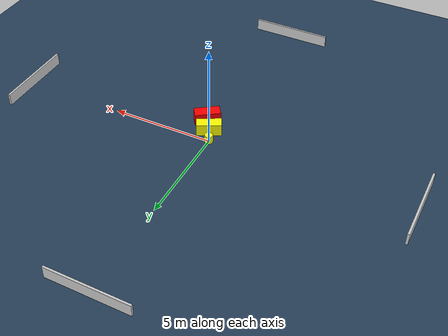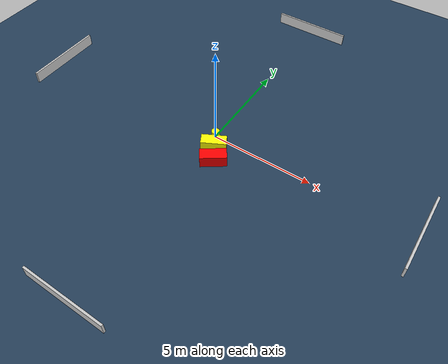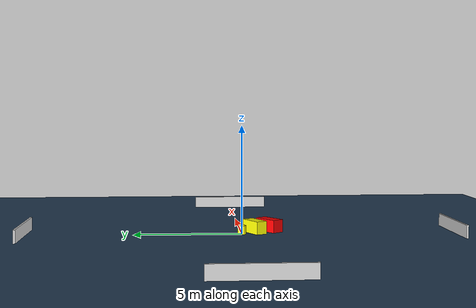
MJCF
<?xml version="1.0" ?>
<mujoco model="generated_environment">
  <option timestep="0.01" integrator="RK4" cone="elliptic"/>
  <default>
    <geom density="1"/>
  </default>
  <asset>
    <texture builtin="gradient" height="3072" name="skybox" rgb1="0.3 0.5 0.7" rgb2="0 0 0" type="skybox" width="512"/>
    <texture builtin="checker" height="300" name="groundplane" rgb1="0.2 0.3 0.4" rgb2="0.1 0.2 0.3" type="2d" width="300"/>
    <material name="groundplane" reflectance="0.2" texrepeat="5 5" texture="groundplane"/>
  </asset>
  <worldbody>
    <light dir="0 0 -1" directional="true" pos="0 0 1.5"/>
    <geom condim="3" friction="0.5 0.005 0.001" material="groundplane" name="floor" pos="0 0 0" size="0 0 0.05" type="plane"/>
    <body name="walls">
      <geom name="wall_1" condim="4" pos="-10.0 0.0 0.3" rgba="0.800000011920929 0.800000011920929 0.800000011920929 1.0" size="0.05 2.0 0.3" type="box"/>
      <geom name="wall_2" condim="4" pos="10.0 0.0 0.3" rgba="0.800000011920929 0.800000011920929 0.800000011920929 1.0" size="0.05 2.0 0.3" type="box"/>
      <geom name="wall_3" condim="4" pos="0.0 -10.0 0.3" rgba="0.800000011920929 0.800000011920929 0.800000011920929 1.0" size="2.0 0.05 0.3" type="box"/>
      <geom name="wall_4" condim="4" pos="0.0 10.0 0.3" rgba="0.800000011920929 0.800000011920929 0.800000011920929 1.0" size="2.0 0.05 0.3" type="box"/>
    </body>
    <body name="robot">
      <joint name="joint_x" type="slide" pos="0 0 0" axis="1 0 0"/>
      <joint name="joint_y" type="slide" pos="0 0 0" axis="0 1 0"/>
      <geom name="robot" type="cylinder" pos="0.0 0.0 0.2" size="0.2 0.2 0.0" mass="5.0" friction="1.0 0.005 0.0001" condim="4" rgba="1.0 1.0 0.0 1.0"/>
    </body>
    <body name="obstacle_1_movable">
      <geom name="obstacle_1_movable" condim="4" pos="0.31774196772915536 -0.627468000491129 0.3" euler="0 0 207.62803877027625" friction="0.0 0.005 0.001" rgba="1.0 1.0 0.0 1.0" size="0.6008939850637154 0.27066441605009245 0.3" type="box" mass="0.1"/>
      <joint type="free"/>
    </body>
    <body name="obstacle_2_static">
      <geom name="obstacle_2_static" condim="4" pos="0.7757336113427972 -1.3524601663827296 0.3" euler="0 0 125.68765018770925" friction="0.0 0.005 0.001" rgba="1.0 0.0 0.0 1.0" size="0.28779881537283525 0.6249412172858755 0.3" type="box"/>
    </body>
  </worldbody>
  <actuator>
    <motor name="actuator_x" joint="joint_x" gear="1" ctrlrange="-1 1"/>
    <motor name="actuator_y" joint="joint_y" gear="1" ctrlrange="-1 1"/>
  </actuator>
</mujoco>
